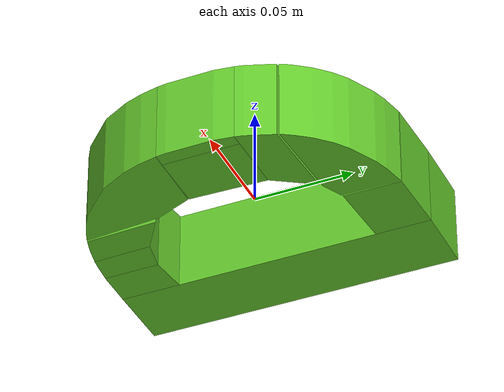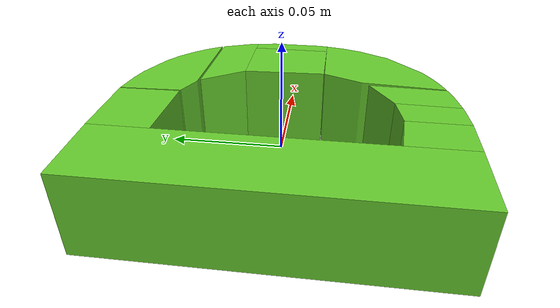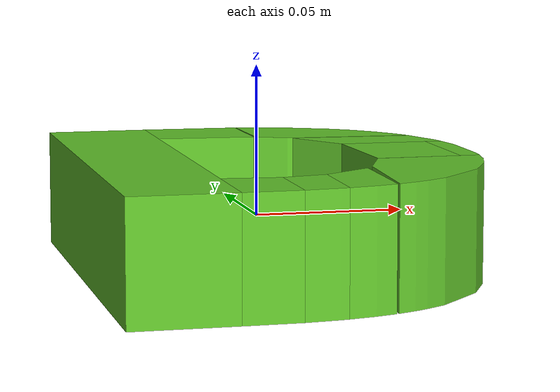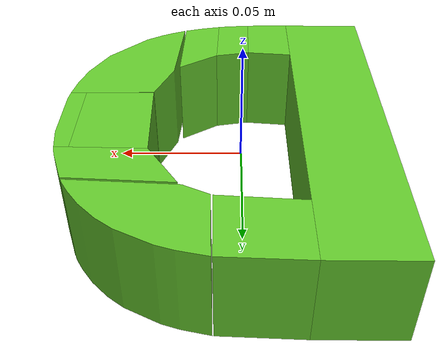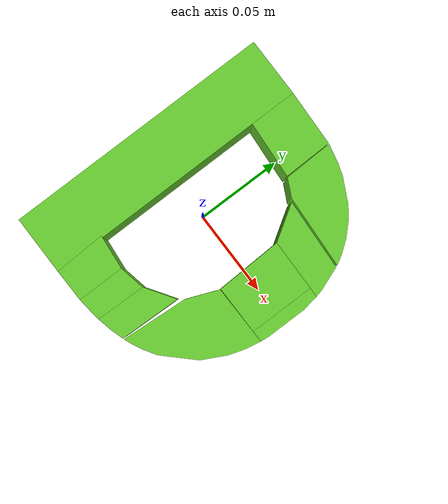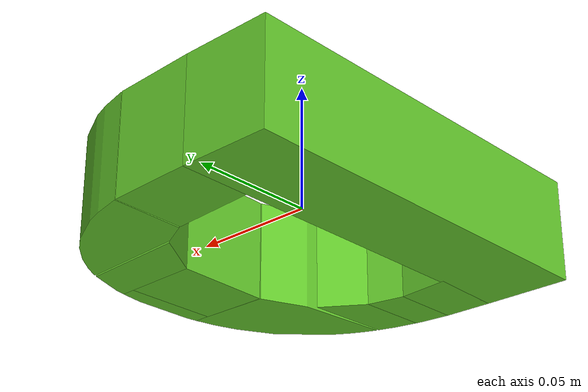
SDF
<?xml version='1.0' encoding='UTF-8'?>
<!-- This SDF was autogenerated by obj_to_drake_sdf.py -->
<sdf version="1.7">
  <model name="letter_d">
    <link name="letter_d">
      <inertial>
        <pose>0 0 0 0 0 0</pose>
        <mass>0.2</mass>
        <inertia>
          <ixx>0.00048788945</ixx>
          <iyy>0.00036401305</iyy>
          <izz>0.00079856917</izz>
          <ixy>-2.0239202e-06</ixy>
          <ixz>-3.4451129e-22</ixz>
          <iyz>8.6127823e-23</iyz>
        </inertia>
      </inertial>
      <visual name="convex_0">
        <pose>0 0 0 0 0 0</pose>
        <geometry>
          <mesh>
            <uri>letter_d_convex_0.obj</uri>
          </mesh>
        </geometry>
        <material>
          <diffuse>0.39215686274509803 0.7843137254901961 0.17254901960784313 1</diffuse>
        </material>
      </visual>
      <collision name="convex_0_volume">
        <pose>0 0 0 0 0 0</pose>
        <geometry>
          <mesh>
            <uri>letter_d_convex_0.obj</uri>
          </mesh>
        </geometry>
        <drake:proximity_properties xmlns:drake="uri:drake">
          <drake:compliant_hydroelastic/>
          <drake:hydroelastic_modulus> 3.0e7 </drake:hydroelastic_modulus>
          <drake:mesh_resolution_hint> 0.18 </drake:mesh_resolution_hint>
          <drake:hunt_crossley_dissipation>10</drake:hunt_crossley_dissipation>
          <drake:mu_dynamic>0.3</drake:mu_dynamic>
        </drake:proximity_properties>
      </collision>
      <visual name="convex_1">
        <pose>0 0 0 0 0 0</pose>
        <geometry>
          <mesh>
            <uri>letter_d_convex_1.obj</uri>
          </mesh>
        </geometry>
        <material>
          <diffuse>0.39215686274509803 0.7843137254901961 0.17254901960784313 1</diffuse>
        </material>
      </visual>
      <collision name="convex_1_volume">
        <pose>0 0 0 0 0 0</pose>
        <geometry>
          <mesh>
            <uri>letter_d_convex_1.obj</uri>
          </mesh>
        </geometry>
        <drake:proximity_properties xmlns:drake="uri:drake">
          <drake:compliant_hydroelastic/>
          <drake:hydroelastic_modulus> 3.0e7 </drake:hydroelastic_modulus>
          <drake:mesh_resolution_hint> 0.18 </drake:mesh_resolution_hint>
          <drake:hunt_crossley_dissipation>10</drake:hunt_crossley_dissipation>
          <drake:mu_dynamic>0.3</drake:mu_dynamic>
        </drake:proximity_properties>
      </collision>
      <visual name="convex_2">
        <pose>0 0 0 0 0 0</pose>
        <geometry>
          <mesh>
            <uri>letter_d_convex_2.obj</uri>
          </mesh>
        </geometry>
        <material>
          <diffuse>0.39215686274509803 0.7843137254901961 0.17254901960784313 1</diffuse>
        </material>
      </visual>
      <collision name="convex_2_volume">
        <pose>0 0 0 0 0 0</pose>
        <geometry>
          <mesh>
            <uri>letter_d_convex_2.obj</uri>
          </mesh>
        </geometry>
        <drake:proximity_properties xmlns:drake="uri:drake">
          <drake:compliant_hydroelastic/>
          <drake:hydroelastic_modulus> 3.0e7 </drake:hydroelastic_modulus>
          <drake:mesh_resolution_hint> 0.18 </drake:mesh_resolution_hint>
          <drake:hunt_crossley_dissipation>10</drake:hunt_crossley_dissipation>
          <drake:mu_dynamic>0.3</drake:mu_dynamic>
        </drake:proximity_properties>
      </collision>
      <visual name="convex_3">
        <pose>0 0 0 0 0 0</pose>
        <geometry>
          <mesh>
            <uri>letter_d_convex_3.obj</uri>
          </mesh>
        </geometry>
        <material>
          <diffuse>0.39215686274509803 0.7843137254901961 0.17254901960784313 1</diffuse>
        </material>
      </visual>
      <collision name="convex_3_volume">
        <pose>0 0 0 0 0 0</pose>
        <geometry>
          <mesh>
            <uri>letter_d_convex_3.obj</uri>
          </mesh>
        </geometry>
        <drake:proximity_properties xmlns:drake="uri:drake">
          <drake:compliant_hydroelastic/>
          <drake:hydroelastic_modulus> 3.0e7 </drake:hydroelastic_modulus>
          <drake:mesh_resolution_hint> 0.18 </drake:mesh_resolution_hint>
          <drake:hunt_crossley_dissipation>10</drake:hunt_crossley_dissipation>
          <drake:mu_dynamic>0.3</drake:mu_dynamic>
        </drake:proximity_properties>
      </collision>
      <visual name="convex_4">
        <pose>0 0 0 0 0 0</pose>
        <geometry>
          <mesh>
            <uri>letter_d_convex_4.obj</uri>
          </mesh>
        </geometry>
        <material>
          <diffuse>0.39215686274509803 0.7843137254901961 0.17254901960784313 1</diffuse>
        </material>
      </visual>
      <collision name="convex_4_volume">
        <pose>0 0 0 0 0 0</pose>
        <geometry>
          <mesh>
            <uri>letter_d_convex_4.obj</uri>
          </mesh>
        </geometry>
        <drake:proximity_properties xmlns:drake="uri:drake">
          <drake:compliant_hydroelastic/>
          <drake:hydroelastic_modulus> 3.0e7 </drake:hydroelastic_modulus>
          <drake:mesh_resolution_hint> 0.18 </drake:mesh_resolution_hint>
          <drake:hunt_crossley_dissipation>10</drake:hunt_crossley_dissipation>
          <drake:mu_dynamic>0.3</drake:mu_dynamic>
        </drake:proximity_properties>
      </collision>
      <visual name="convex_5">
        <pose>0 0 0 0 0 0</pose>
        <geometry>
          <mesh>
            <uri>letter_d_convex_5.obj</uri>
          </mesh>
        </geometry>
        <material>
          <diffuse>0.39215686274509803 0.7843137254901961 0.17254901960784313 1</diffuse>
        </material>
      </visual>
      <collision name="convex_5_volume">
        <pose>0 0 0 0 0 0</pose>
        <geometry>
          <mesh>
            <uri>letter_d_convex_5.obj</uri>
          </mesh>
        </geometry>
        <drake:proximity_properties xmlns:drake="uri:drake">
          <drake:compliant_hydroelastic/>
          <drake:hydroelastic_modulus> 3.0e7 </drake:hydroelastic_modulus>
          <drake:mesh_resolution_hint> 0.18 </drake:mesh_resolution_hint>
          <drake:hunt_crossley_dissipation>10</drake:hunt_crossley_dissipation>
          <drake:mu_dynamic>0.3</drake:mu_dynamic>
        </drake:proximity_properties>
      </collision>
      <visual name="convex_6">
        <pose>0 0 0 0 0 0</pose>
        <geometry>
          <mesh>
            <uri>letter_d_convex_6.obj</uri>
          </mesh>
        </geometry>
        <material>
          <diffuse>0.39215686274509803 0.7843137254901961 0.17254901960784313 1</diffuse>
        </material>
      </visual>
      <collision name="convex_6_volume">
        <pose>0 0 0 0 0 0</pose>
        <geometry>
          <mesh>
            <uri>letter_d_convex_6.obj</uri>
          </mesh>
        </geometry>
        <drake:proximity_properties xmlns:drake="uri:drake">
          <drake:compliant_hydroelastic/>
          <drake:hydroelastic_modulus> 3.0e7 </drake:hydroelastic_modulus>
          <drake:mesh_resolution_hint> 0.18 </drake:mesh_resolution_hint>
          <drake:hunt_crossley_dissipation>10</drake:hunt_crossley_dissipation>
          <drake:mu_dynamic>0.3</drake:mu_dynamic>
        </drake:proximity_properties>
      </collision>
      <visual name="convex_7">
        <pose>0 0 0 0 0 0</pose>
        <geometry>
          <mesh>
            <uri>letter_d_convex_7.obj</uri>
          </mesh>
        </geometry>
        <material>
          <diffuse>0.39215686274509803 0.7843137254901961 0.17254901960784313 1</diffuse>
        </material>
      </visual>
      <collision name="convex_7_volume">
        <pose>0 0 0 0 0 0</pose>
        <geometry>
          <mesh>
            <uri>letter_d_convex_7.obj</uri>
          </mesh>
        </geometry>
        <drake:proximity_properties xmlns:drake="uri:drake">
          <drake:compliant_hydroelastic/>
          <drake:hydroelastic_modulus> 3.0e7 </drake:hydroelastic_modulus>
          <drake:mesh_resolution_hint> 0.18 </drake:mesh_resolution_hint>
          <drake:hunt_crossley_dissipation>10</drake:hunt_crossley_dissipation>
          <drake:mu_dynamic>0.3</drake:mu_dynamic>
        </drake:proximity_properties>
      </collision>
      <visual name="convex_8">
        <pose>0 0 0 0 0 0</pose>
        <geometry>
          <mesh>
            <uri>letter_d_convex_8.obj</uri>
          </mesh>
        </geometry>
        <material>
          <diffuse>0.39215686274509803 0.7843137254901961 0.17254901960784313 1</diffuse>
        </material>
      </visual>
      <collision name="convex_8_volume">
        <pose>0 0 0 0 0 0</pose>
        <geometry>
          <mesh>
            <uri>letter_d_convex_8.obj</uri>
          </mesh>
        </geometry>
        <drake:proximity_properties xmlns:drake="uri:drake">
          <drake:compliant_hydroelastic/>
          <drake:hydroelastic_modulus> 3.0e7 </drake:hydroelastic_modulus>
          <drake:mesh_resolution_hint> 0.18 </drake:mesh_resolution_hint>
          <drake:hunt_crossley_dissipation>10</drake:hunt_crossley_dissipation>
          <drake:mu_dynamic>0.3</drake:mu_dynamic>
        </drake:proximity_properties>
      </collision>
      <visual name="convex_9">
        <pose>0 0 0 0 0 0</pose>
        <geometry>
          <mesh>
            <uri>letter_d_convex_9.obj</uri>
          </mesh>
        </geometry>
        <material>
          <diffuse>0.39215686274509803 0.7843137254901961 0.17254901960784313 1</diffuse>
        </material>
      </visual>
      <collision name="convex_9_volume">
        <pose>0 0 0 0 0 0</pose>
        <geometry>
          <mesh>
            <uri>letter_d_convex_9.obj</uri>
          </mesh>
        </geometry>
        <drake:proximity_properties xmlns:drake="uri:drake">
          <drake:compliant_hydroelastic/>
          <drake:hydroelastic_modulus> 3.0e7 </drake:hydroelastic_modulus>
          <drake:mesh_resolution_hint> 0.18 </drake:mesh_resolution_hint>
          <drake:hunt_crossley_dissipation>10</drake:hunt_crossley_dissipation>
          <drake:mu_dynamic>0.3</drake:mu_dynamic>
        </drake:proximity_properties>
      </collision>
    </link>
  </model>
</sdf>
